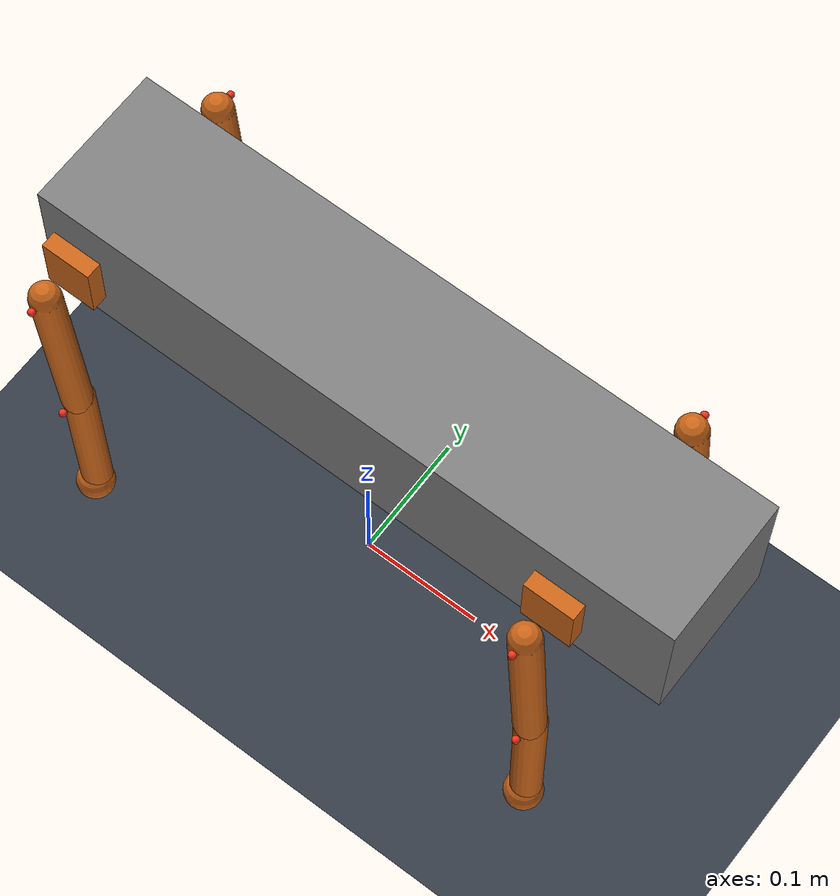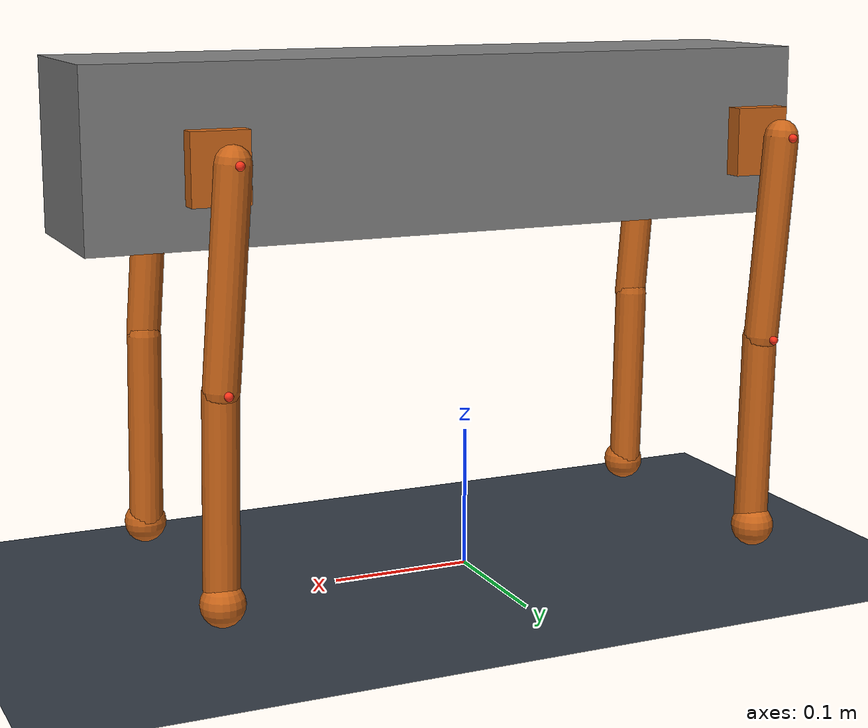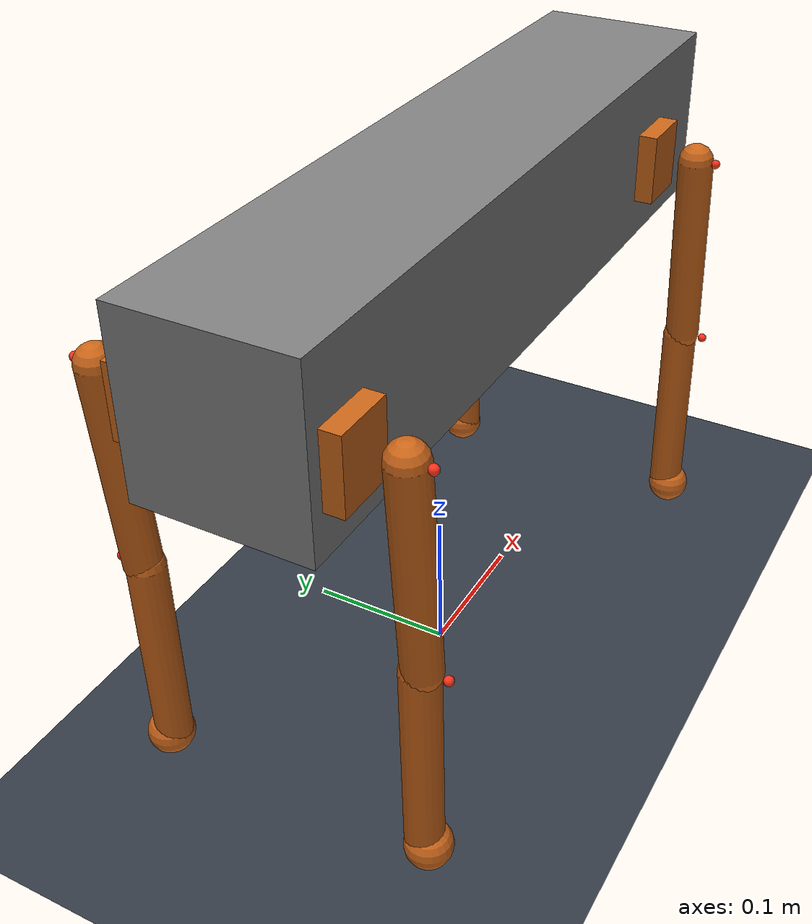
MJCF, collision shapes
<mujoco model="New STEP / free-body dynamics / ESTIMATED PHYSICS">
  <compiler angle="radian" meshdir="/Users/etnlwind/project/spot_omg/simulation/mujoco/cad_300mm" />
  <option gravity="0 0 -9.81" timestep="0.002" integrator="implicitfast" solver="Newton" iterations="100" cone="elliptic" />
  <statistic center="0 0 0.22" extent="0.65" />
  <asset>
    <mesh name="fl_j1" file="fl_j1.stl" scale="0.001 0.001 0.001" />
    <mesh name="fl_j2" file="fl_j2.stl" scale="0.001 0.001 0.001" />
    <mesh name="fl_j3" file="fl_j3.stl" scale="0.001 0.001 0.001" />
    <mesh name="fr_j1" file="fr_j1.stl" scale="0.001 0.001 0.001" />
    <mesh name="fr_j2" file="fr_j2.stl" scale="0.001 0.001 0.001" />
    <mesh name="fr_j3" file="fr_j3.stl" scale="0.001 0.001 0.001" />
    <mesh name="rl_j1" file="rl_j1.stl" scale="0.001 0.001 0.001" />
    <mesh name="rl_j2" file="rl_j2.stl" scale="0.001 0.001 0.001" />
    <mesh name="rl_j3" file="rl_j3.stl" scale="0.001 0.001 0.001" />
    <mesh name="rr_j1" file="rr_j1.stl" scale="0.001 0.001 0.001" />
    <mesh name="rr_j2" file="rr_j2.stl" scale="0.001 0.001 0.001" />
    <mesh name="rr_j3" file="rr_j3.stl" scale="0.001 0.001 0.001" />
    <mesh name="body_0" file="body_0.stl" scale="0.001 0.001 0.001" />
    <mesh name="body_1" file="body_1.stl" scale="0.001 0.001 0.001" />
    <mesh name="body_2" file="body_2.stl" scale="0.001 0.001 0.001" />
    <mesh name="body_3" file="body_3.stl" scale="0.001 0.001 0.001" />
  </asset>
  <worldbody>
    <light pos="0 -1 2" diffuse="0.8 0.8 0.8" />
    <geom type="plane" size="20 20 .01" pos="0 0 0" rgba=".2 .23 .27 1" contype="1" conaffinity="1" name="floor" />
    <body name="robot">
      <freejoint name="root" />
      <body name="cad_base" pos=".1495 -.05225 .253306637937" quat=".707106781187 0 0 .707106781187">
        <geom name="body_0" type="mesh" mesh="body_0" contype="0" conaffinity="0" rgba="0.65 0.68 0.72 1" />
        <geom name="body_1" type="mesh" mesh="body_1" contype="0" conaffinity="0" rgba="0.65 0.68 0.72 1" />
        <geom name="body_2" type="mesh" mesh="body_2" contype="0" conaffinity="0" rgba="0.65 0.68 0.72 1" />
        <geom name="body_3" type="mesh" mesh="body_3" contype="0" conaffinity="0" rgba="0.65 0.68 0.72 1" />
        <body name="fl_j1_link" pos="0.091365438351 -0.068564710884 0.066693362063">
          <joint name="fl_j1" type="hinge" axis="0.00462263499864 -0.999967041706 0.00667433499804" limited="true" range="-0.523598775598 0.523598775598" damping="0.05" frictionloss="0.02" armature="0.0001" />
          <geom name="fl_j1" type="mesh" mesh="fl_j1" contype="0" conaffinity="0" rgba="0.25 0.6 0.9 1" pos="-0.091365438351 0.068564710884 -0.066693362063" />
          <site name="fl_j1_axis" type="sphere" size=".003" rgba="1 .2 .1 1" />
          <body name="fl_j2_link" pos="0.066638129074 0.01888624552 -0.008157801114">
            <joint name="fl_j2" type="hinge" axis="0.999955369008 0.00901402200007 0.00282973500002" limited="true" range="-0.785398163397 1.74532925199" damping="0.05" frictionloss="0.02" armature="0.0001" />
            <geom name="fl_j2" type="mesh" mesh="fl_j2" contype="0" conaffinity="0" rgba="0.25 0.6 0.9 1" pos="-0.158003567425 0.049678465364 -0.058535560949" />
            <site name="fl_j2_axis" type="sphere" size=".003" rgba="1 .2 .1 1" />
            <body name="fl_j3_link" pos="0.0019 -0.010985824147 -0.141293140854">
              <joint name="fl_j3" type="hinge" axis="-0.999955369008 -0.00901402200007 -0.00282973500002" limited="true" range="0 2.61799387799" damping="0.05" frictionloss="0.02" armature="0.0001" />
              <geom name="fl_j3" type="mesh" mesh="fl_j3" contype="0" conaffinity="0" rgba="0.25 0.6 0.9 1" pos="-0.159903567425 0.060664289511 0.082757579905" />
              <site name="fl_j3_axis" type="sphere" size=".003" rgba="1 .2 .1 1" />
              <inertial pos="-0.0172485457575 -0.000405914270128 -0.0716671065269" mass="0.155" diaginertia="0.000359497918257 0.000366816352968 3.34622812381e-05" />
              <geom name="fl_foot" type="sphere" pos="-0.0145769284725 -0.00253894927687 -0.138551288503" size="0.015" contype="1" conaffinity="1" group="3" rgba=".8 .4 .1 .15" />
              <geom name="fl_j3_collision" type="capsule" fromto="-0.0172485457575 0 0 -0.0172485457575 -0.00253894927687 -0.138551288503" size=".012" contype="1" conaffinity="1" group="3" rgba=".8 .4 .1 .15" />
            </body>
            <inertial pos="-0.0138442275202 -0.00460045004127 -0.0715202983452" mass="0.2245" diaginertia="0.000531267935968 0.00055945295901 9.0798070672e-05" />
            <geom name="fl_j2_collision" type="capsule" fromto="-0.0138442275202 0 0 -0.0138442275202 -0.010985824147 -0.141293140854" size=".012" contype="1" conaffinity="1" group="3" rgba=".8 .4 .1 .15" />
          </body>
          <inertial pos="0.00679605685774 0.0184139569091 -0.0137231929956" mass="0.12" diaginertia="3.84667591695e-05 4.47149628833e-05 3.76532745457e-05" />
          <geom name="fl_j1_collision" type="box" pos="0.00679605685774 0.0184139569091 -0.0137231929956" size="0.0234258079529 0.0198132123947 0.0238559341431" contype="1" conaffinity="1" group="3" rgba=".8 .4 .1 .15" />
        </body>
        <body name="fr_j1_link" pos="0.013134561649 -0.068564710884 0.066693362063">
          <joint name="fr_j1" type="hinge" axis="0.00462263499864 0.999967041706 -0.00667433499804" limited="true" range="-0.523598775598 0.523598775598" damping="0.05" frictionloss="0.02" armature="0.0001" />
          <geom name="fr_j1" type="mesh" mesh="fr_j1" contype="0" conaffinity="0" rgba="0.25 0.8 0.6 1" pos="-0.013134561649 0.068564710884 -0.066693362063" />
          <site name="fr_j1_axis" type="sphere" size=".003" rgba="1 .2 .1 1" />
          <body name="fr_j2_link" pos="-0.066638129074 0.01888624552 -0.008157801114">
            <joint name="fr_j2" type="hinge" axis="0.999955369008 -0.00901402200007 -0.00282973500002" limited="true" range="-0.785398163397 1.74532925199" damping="0.05" frictionloss="0.02" armature="0.0001" />
            <geom name="fr_j2" type="mesh" mesh="fr_j2" contype="0" conaffinity="0" rgba="0.25 0.8 0.6 1" pos="0.053503567425 0.049678465364 -0.058535560949" />
            <site name="fr_j2_axis" type="sphere" size=".003" rgba="1 .2 .1 1" />
            <body name="fr_j3_link" pos="-0.0019 -0.010985824147 -0.141293140854">
              <joint name="fr_j3" type="hinge" axis="-0.999955369008 0.00901402200007 0.00282973500002" limited="true" range="0 2.61799387799" damping="0.05" frictionloss="0.02" armature="0.0001" />
              <geom name="fr_j3" type="mesh" mesh="fr_j3" contype="0" conaffinity="0" rgba="0.25 0.8 0.6 1" pos="0.055403567425 0.060664289511 0.082757579905" />
              <site name="fr_j3_axis" type="sphere" size=".003" rgba="1 .2 .1 1" />
              <inertial pos="0.0172485448038 -0.000405914270128 -0.0716671065269" mass="0.155" diaginertia="0.000359497918257 0.00036681635101 3.34622792804e-05" />
              <geom name="fr_foot" type="sphere" pos="0.0145769277452 -0.00253894927687 -0.138551288503" size="0.015" contype="1" conaffinity="1" group="3" rgba=".8 .4 .1 .15" />
              <geom name="fr_j3_collision" type="capsule" fromto="0.0172485448038 0 0 0.0172485448038 -0.00253894927687 -0.138551288503" size=".012" contype="1" conaffinity="1" group="3" rgba=".8 .4 .1 .15" />
            </body>
            <inertial pos="0.0138442318117 -0.00460045004127 -0.0715202983452" mass="0.2245" diaginertia="0.000531267935968 0.000559452944925 9.07980565865e-05" />
            <geom name="fr_j2_collision" type="capsule" fromto="0.0138442318117 0 0 0.0138442318117 -0.010985824147 -0.141293140854" size=".012" contype="1" conaffinity="1" group="3" rgba=".8 .4 .1 .15" />
          </body>
          <inertial pos="-0.00679605781141 0.0184139569091 -0.0137231929956" mass="0.12" diaginertia="3.84667591695e-05 4.47149610961e-05 3.76532727585e-05" />
          <geom name="fr_j1_collision" type="box" pos="-0.00679605781141 0.0184139569091 -0.0137231929956" size="0.0234258069992 0.0198132123947 0.0238559341431" contype="1" conaffinity="1" group="3" rgba=".8 .4 .1 .15" />
        </body>
        <body name="rl_j1_link" pos="0.091365438351 0.330435289116 0.066693362063">
          <joint name="rl_j1" type="hinge" axis="0.00462263499864 -0.999967041706 0.00667433499804" limited="true" range="-0.523598775598 0.523598775598" damping="0.05" frictionloss="0.02" armature="0.0001" />
          <geom name="rl_j1" type="mesh" mesh="rl_j1" contype="0" conaffinity="0" rgba="0.95 0.65 0.25 1" pos="-0.091365438351 -0.330435289116 -0.066693362063" />
          <site name="rl_j1_axis" type="sphere" size=".003" rgba="1 .2 .1 1" />
          <body name="rl_j2_link" pos="0.066638129074 0.01888624552 -0.008157801114">
            <joint name="rl_j2" type="hinge" axis="0.999955369008 0.00901402200007 0.00282973500002" limited="true" range="-0.785398163397 1.74532925199" damping="0.05" frictionloss="0.02" armature="0.0001" />
            <geom name="rl_j2" type="mesh" mesh="rl_j2" contype="0" conaffinity="0" rgba="0.95 0.65 0.25 1" pos="-0.158003567425 -0.349321534636 -0.058535560949" />
            <site name="rl_j2_axis" type="sphere" size=".003" rgba="1 .2 .1 1" />
            <body name="rl_j3_link" pos="0.0019 -0.010985824147 -0.141293140854">
              <joint name="rl_j3" type="hinge" axis="-0.999955369008 -0.00901402200007 -0.00282973500002" limited="true" range="0 2.61799387799" damping="0.05" frictionloss="0.02" armature="0.0001" />
              <geom name="rl_j3" type="mesh" mesh="rl_j3" contype="0" conaffinity="0" rgba="0.95 0.65 0.25 1" pos="-0.159903567425 -0.338335710489 0.082757579905" />
              <site name="rl_j3_axis" type="sphere" size=".003" rgba="1 .2 .1 1" />
              <inertial pos="-0.0172485457575 -0.000405916177477 -0.0716671065269" mass="0.155" diaginertia="0.000359497940202 0.000366816352968 3.3462303183e-05" />
              <geom name="rl_foot" type="sphere" pos="-0.0145769284725 -0.00253894988488 -0.138551288503" size="0.015" contype="1" conaffinity="1" group="3" rgba=".8 .4 .1 .15" />
              <geom name="rl_j3_collision" type="capsule" fromto="-0.0172485457575 0 0 -0.0172485457575 -0.00253894988488 -0.138551288503" size=".012" contype="1" conaffinity="1" group="3" rgba=".8 .4 .1 .15" />
            </body>
            <inertial pos="-0.0138442275202 -0.00460045004127 -0.0715202983452" mass="0.2245" diaginertia="0.000531267912613 0.00055945295901 9.07980473167e-05" />
            <geom name="rl_j2_collision" type="capsule" fromto="-0.0138442275202 0 0 -0.0138442275202 -0.010985824147 -0.141293140854" size=".012" contype="1" conaffinity="1" group="3" rgba=".8 .4 .1 .15" />
          </body>
          <inertial pos="0.00679605685774 0.0184139540481 -0.0137231929956" mass="0.12" diaginertia="3.84667425416e-05 4.47149628833e-05 3.76532579178e-05" />
          <geom name="rl_j1_collision" type="box" pos="0.00679605685774 0.0184139540481 -0.0137231929956" size="0.0234258079529 0.0198132019043 0.0238559341431" contype="1" conaffinity="1" group="3" rgba=".8 .4 .1 .15" />
        </body>
        <body name="rr_j1_link" pos="0.013134561649 0.330435289116 0.066693362063">
          <joint name="rr_j1" type="hinge" axis="0.00462263499864 0.999967041706 -0.00667433499804" limited="true" range="-0.523598775598 0.523598775598" damping="0.05" frictionloss="0.02" armature="0.0001" />
          <geom name="rr_j1" type="mesh" mesh="rr_j1" contype="0" conaffinity="0" rgba="0.8 0.4 0.7 1" pos="-0.013134561649 -0.330435289116 -0.066693362063" />
          <site name="rr_j1_axis" type="sphere" size=".003" rgba="1 .2 .1 1" />
          <body name="rr_j2_link" pos="-0.066638129074 0.01888624552 -0.008157801114">
            <joint name="rr_j2" type="hinge" axis="0.999955369008 -0.00901402200007 -0.00282973500002" limited="true" range="-0.785398163397 1.74532925199" damping="0.05" frictionloss="0.02" armature="0.0001" />
            <geom name="rr_j2" type="mesh" mesh="rr_j2" contype="0" conaffinity="0" rgba="0.8 0.4 0.7 1" pos="0.053503567425 -0.349321534636 -0.058535560949" />
            <site name="rr_j2_axis" type="sphere" size=".003" rgba="1 .2 .1 1" />
            <body name="rr_j3_link" pos="-0.0019 -0.010985824147 -0.141293140854">
              <joint name="rr_j3" type="hinge" axis="-0.999955369008 0.00901402200007 0.00282973500002" limited="true" range="0 2.61799387799" damping="0.05" frictionloss="0.02" armature="0.0001" />
              <geom name="rr_j3" type="mesh" mesh="rr_j3" contype="0" conaffinity="0" rgba="0.8 0.4 0.7 1" pos="0.055403567425 -0.338335710489 0.082757579905" />
              <site name="rr_j3_axis" type="sphere" size=".003" rgba="1 .2 .1 1" />
              <inertial pos="0.0172485448038 -0.000405916177477 -0.0716671065269" mass="0.155" diaginertia="0.000359497940202 0.00036681635101 3.34623012253e-05" />
              <geom name="rr_foot" type="sphere" pos="0.0145769277452 -0.00253894988488 -0.138551288503" size="0.015" contype="1" conaffinity="1" group="3" rgba=".8 .4 .1 .15" />
              <geom name="rr_j3_collision" type="capsule" fromto="0.0172485448038 0 0 0.0172485448038 -0.00253894988488 -0.138551288503" size=".012" contype="1" conaffinity="1" group="3" rgba=".8 .4 .1 .15" />
            </body>
            <inertial pos="0.0138442318117 -0.00460045004127 -0.0715202983452" mass="0.2245" diaginertia="0.000531267912613 0.000559452944925 9.07980332312e-05" />
            <geom name="rr_j2_collision" type="capsule" fromto="0.0138442318117 0 0 0.0138442318117 -0.010985824147 -0.141293140854" size=".012" contype="1" conaffinity="1" group="3" rgba=".8 .4 .1 .15" />
          </body>
          <inertial pos="-0.00679605781141 0.0184139540481 -0.0137231929956" mass="0.12" diaginertia="3.84667425416e-05 4.47149610961e-05 3.76532561306e-05" />
          <geom name="rr_j1_collision" type="box" pos="-0.00679605781141 0.0184139540481 -0.0137231929956" size="0.0234258069992 0.0198132019043 0.0238559341431" contype="1" conaffinity="1" group="3" rgba=".8 .4 .1 .15" />
        </body>
        <inertial pos="0.0520000007153 0.121490783691 0.0595" mass="1.8" diaginertia="0.0415156268215 0.00399717605486 0.0413356028764" />
        <geom name="chassis_collision" type="box" pos="0.0520000007153 0.121490783691 0.0595" size="0.0564000008106 0.256342956543 0.059" contype="1" conaffinity="1" group="3" rgba=".5 .5 .5 .15" />
        <body name="battery" pos="0.05225 0.1495 0.06">
          <inertial pos="0 0 0" mass="0.6" diaginertia="0.00106 0.00018125 0.00108125" />
        </body>
      </body>
    </body>
  </worldbody>
  <default>
    <geom friction="0.8 0.005 0.0001" condim="4" solref="0.01 1" />
  </default>
  <actuator>
    <motor name="fl_j1_motor" joint="fl_j1" gear="1" />
    <motor name="fl_j2_motor" joint="fl_j2" gear="1" />
    <motor name="fl_j3_motor" joint="fl_j3" gear="1" />
    <motor name="fr_j1_motor" joint="fr_j1" gear="1" />
    <motor name="fr_j2_motor" joint="fr_j2" gear="1" />
    <motor name="fr_j3_motor" joint="fr_j3" gear="1" />
    <motor name="rl_j1_motor" joint="rl_j1" gear="1" />
    <motor name="rl_j2_motor" joint="rl_j2" gear="1" />
    <motor name="rl_j3_motor" joint="rl_j3" gear="1" />
    <motor name="rr_j1_motor" joint="rr_j1" gear="1" />
    <motor name="rr_j2_motor" joint="rr_j2" gear="1" />
    <motor name="rr_j3_motor" joint="rr_j3" gear="1" />
  </actuator>
</mujoco>
